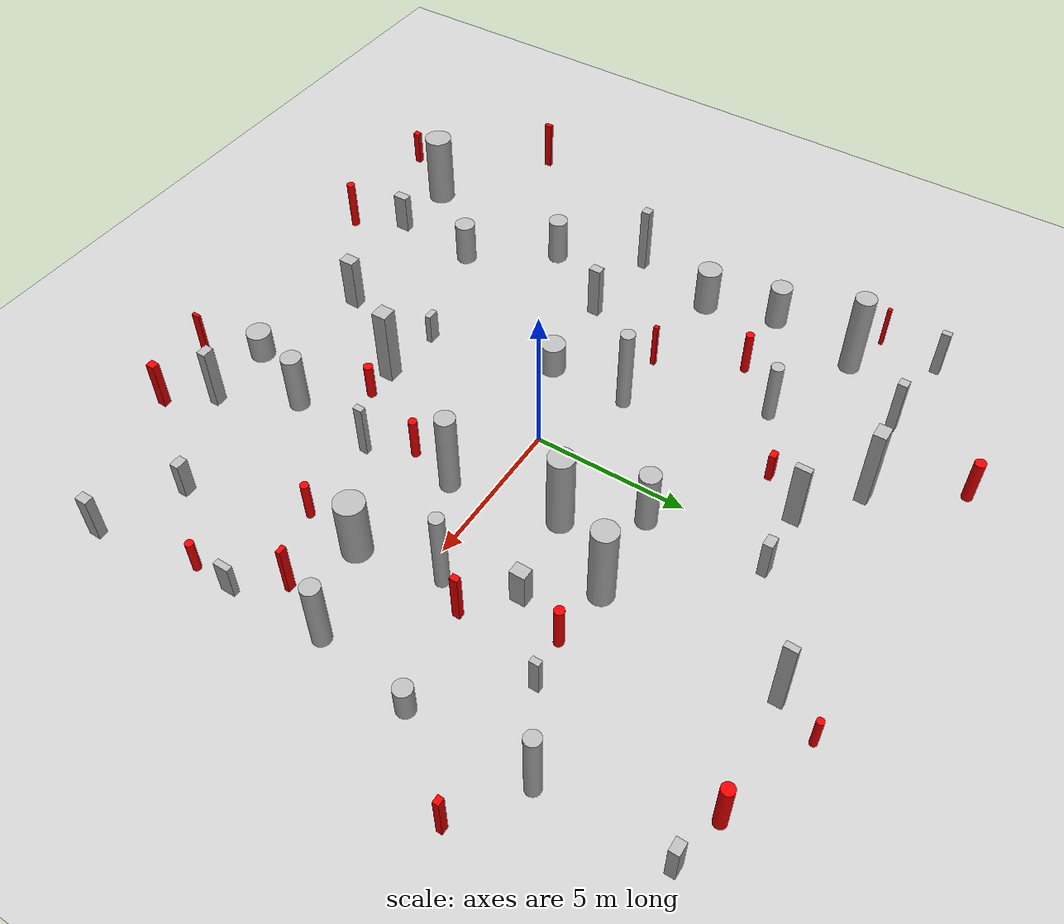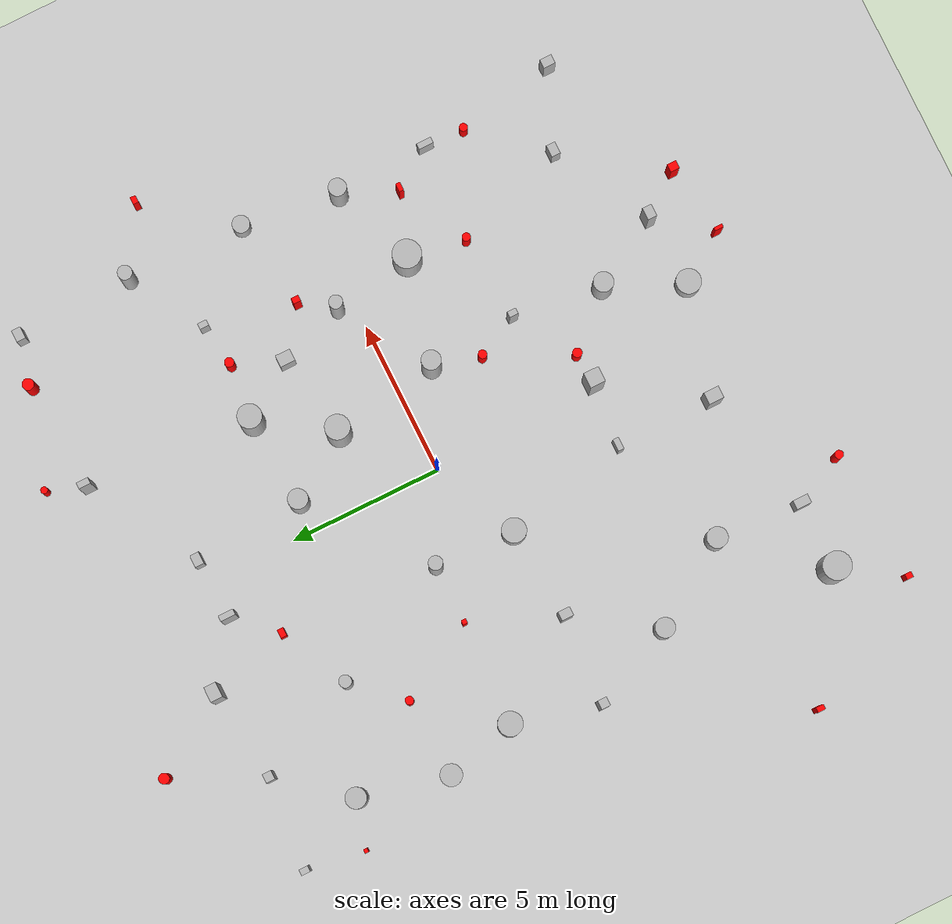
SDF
<sdf version='1.7'>
            <world name='default'>
                <!-- Generated benchmark scenario: Sparse-Slow. Dynamic cylinders: 20; speed range: 0.3-0.5 m/s. -->

                <light name='sun' type='directional'>
                <cast_shadows>1</cast_shadows>
                <pose>0 0 10 0 -0 0</pose>
                <diffuse>0.8 0.8 0.8 1</diffuse>
                <specular>0.2 0.2 0.2 1</specular>
                <attenuation>
                    <range>1000</range>
                    <constant>0.9</constant>
                    <linear>0.01</linear>
                    <quadratic>0.001</quadratic>
                </attenuation>
                <direction>-0.5 0.1 -0.9</direction>
                <spot>
                    <inner_angle>0</inner_angle>
                    <outer_angle>0</outer_angle>
                    <falloff>0</falloff>
                </spot>
                </light>
                <model name='ground_plane'>
                <static>1</static>
                <link name='link'>
                    <collision name='collision'>
                    <geometry>
                        <plane>
                        <normal>0 0 1</normal>
                        <size>100 100</size>
                        </plane>
                    </geometry>
                    <surface>
                        <contact>
                        <collide_bitmask>65535</collide_bitmask>
                        <ode/>
                        </contact>
                        <friction>
                        <ode>
                            <mu>100</mu>
                            <mu2>50</mu2>
                        </ode>
                        <torsional>
                            <ode/>
                        </torsional>
                        </friction>
                        <bounce/>
                    </surface>
                    <max_contacts>10</max_contacts>
                    </collision>
                    <visual name='visual'>
                    <cast_shadows>0</cast_shadows>
                    <geometry>
                        <plane>
                        <normal>0 0 1</normal>
                        <size>100 100</size>
                        </plane>
                    </geometry>
                    <material>
                        <script>
                        <uri>file://media/materials/scripts/gazebo.material</uri>
                        <name>Gazebo/Grey</name>
                        </script>
                    </material>
                    </visual>
                    <self_collide>0</self_collide>
                    <enable_wind>0</enable_wind>
                    <kinematic>0</kinematic>
                </link>
                </model>
                <gravity>0 0 -9.8</gravity>
                <magnetic_field>6e-06 2.3e-05 -4.2e-05</magnetic_field>
                <atmosphere type='adiabatic'/>
                <physics type='ode'>
                <max_step_size>0.001</max_step_size>
                <real_time_factor>1</real_time_factor>
                <real_time_update_rate>1000</real_time_update_rate>
                </physics>
                <scene>
                <ambient>0.4 0.4 0.4 1</ambient>
                <background>0.7 0.7 0.7 1</background>
                <shadows>1</shadows>
                </scene>
                <wind/>
                <spherical_coordinates>
                <surface_model>EARTH_WGS84</surface_model>
                <latitude_deg>0</latitude_deg>
                <longitude_deg>0</longitude_deg>
                <elevation>0</elevation>
                <heading_deg>0</heading_deg>
                </spherical_coordinates>

                            <model name='cylinder_0_0.7_0.7_2.1'>
                            <static>true</static>
                            <pose>0.9762700785464951 4.30378732744839 1.0448831829968968 0 0 0</pose> <!-- X, Y, Z, Roll, Pitch, Yaw -->
                            <link name='link'>
                                <visual name='visual'>
                                <geometry>
                                    <cylinder>
                                        <radius>0.3270964398016714</radius>
                                        <length>2.0897663659937935</length>
                                    </cylinder>
                                </geometry>
                                </visual>
                            </link>
                            </model>

                            <model name='cylinder_1_0.6_0.6_2.9'>
                            <static>true</static>
                            <pose>2.917882261333123 -1.2482557747461502 1.4636627605010293 0 0 0</pose> <!-- X, Y, Z, Roll, Pitch, Yaw -->
                            <link name='link'>
                                <visual name='visual'>
                                <geometry>
                                    <cylinder>
                                        <radius>0.3150324556477333</radius>
                                        <length>2.9273255210020586</length>
                                    </cylinder>
                                </geometry>
                                </visual>
                            </link>
                            </model>

                            <model name='cylinder_2_0.4_0.4_2.9'>
                            <static>true</static>
                            <pose>5.834500761653292 0.5778983950580887 1.425596638292661 0 0 0</pose> <!-- X, Y, Z, Roll, Pitch, Yaw -->
                            <link name='link'>
                                <visual name='visual'>
                                <geometry>
                                    <cylinder>
                                        <radius>0.2213108174593661</radius>
                                        <length>2.851193276585322</length>
                                    </cylinder>
                                </geometry>
                                </visual>
                            </link>
                            </model>

                            <model name='cylinder_3_0.9_0.9_2.6'>
                            <static>true</static>
                            <pose>-8.257414005969185 -9.595632051193485 1.2781567509498504 0 0 0</pose> <!-- X, Y, Z, Roll, Pitch, Yaw -->
                            <link name='link'>
                                <visual name='visual'>
                                <geometry>
                                    <cylinder>
                                        <radius>0.46100364447404574</radius>
                                        <length>2.5563135018997007</length>
                                    </cylinder>
                                </geometry>
                                </visual>
                            </link>
                            </model>

                            <model name='cylinder_4_0.5_0.5_2.6'>
                            <static>true</static>
                            <pose>9.572366844655281 5.983171284334471 1.2805291762864555 0 0 0</pose> <!-- X, Y, Z, Roll, Pitch, Yaw -->
                            <link name='link'>
                                <visual name='visual'>
                                <geometry>
                                    <cylinder>
                                        <radius>0.23548232776067998</radius>
                                        <length>2.561058352572911</length>
                                    </cylinder>
                                </geometry>
                                </visual>
                            </link>
                            </model>

                            <model name='cylinder_5_0.6_0.6_2.0'>
                            <static>true</static>
                            <pose>2.798420426550477 -7.132934251819072 1.0218483217500718 0 0 0</pose> <!-- X, Y, Z, Roll, Pitch, Yaw -->
                            <link name='link'>
                                <visual name='visual'>
                                <geometry>
                                    <cylinder>
                                        <radius>0.3243985819971571</radius>
                                        <length>2.0436966435001436</length>
                                    </cylinder>
                                </geometry>
                                </visual>
                            </link>
                            </model>

                            <model name='cylinder_6_0.4_0.4_2.1'>
                            <static>true</static>
                            <pose>-4.70888775790746 5.484673788684333 1.0684339488686485 0 0 0</pose> <!-- X, Y, Z, Roll, Pitch, Yaw -->
                            <link name='link'>
                                <visual name='visual'>
                                <geometry>
                                    <cylinder>
                                        <radius>0.20563694013090655</radius>
                                        <length>2.136867897737297</length>
                                    </cylinder>
                                </geometry>
                                </visual>
                            </link>
                            </model>

                            <model name='cylinder_7_0.8_0.8_2.9'>
                            <static>true</static>
                            <pose>2.352709941517542 2.2419144544484286 1.4437480785146242 0 0 0</pose> <!-- X, Y, Z, Roll, Pitch, Yaw -->
                            <link name='link'>
                                <visual name='visual'>
                                <geometry>
                                    <cylinder>
                                        <radius>0.404546089731045</radius>
                                        <length>2.8874961570292483</length>
                                    </cylinder>
                                </geometry>
                                </visual>
                            </link>
                            </model>

                            <model name='cylinder_8_0.8_0.8_1.1'>
                            <static>true</static>
                            <pose>-2.80984198852428 -1.259360924013171 0.5602254716292698 0 0 0</pose> <!-- X, Y, Z, Roll, Pitch, Yaw -->
                            <link name='link'>
                                <visual name='visual'>
                                <geometry>
                                    <cylinder>
                                        <radius>0.4000300146337003</radius>
                                        <length>1.1204509432585397</length>
                                    </cylinder>
                                </geometry>
                                </visual>
                            </link>
                            </model>

                            <model name='cylinder_9_0.5_0.5_3.0'>
                            <static>true</static>
                            <pose>-2.725784581147548 1.4039354083575937 1.4883738380592262 0 0 0</pose> <!-- X, Y, Z, Roll, Pitch, Yaw -->
                            <link name='link'>
                                <visual name='visual'>
                                <geometry>
                                    <cylinder>
                                        <radius>0.23061344322440844</radius>
                                        <length>2.9767476761184524</length>
                                    </cylinder>
                                </geometry>
                                </visual>
                            </link>
                            </model>

                            <model name='cylinder_10_0.7_0.7_1.5'>
                            <static>true</static>
                            <pose>-5.822464878103306 -6.773809642300074 0.7532916025397821 0 0 0</pose> <!-- X, Y, Z, Roll, Pitch, Yaw -->
                            <link name='link'>
                                <visual name='visual'>
                                <geometry>
                                    <cylinder>
                                        <radius>0.3398932318568919</radius>
                                        <length>1.5065832050795642</length>
                                    </cylinder>
                                </geometry>
                                </visual>
                            </link>
                            </model>

                            <model name='cylinder_11_0.7_0.7_3.0'>
                            <static>true</static>
                            <pose>-8.057974484138775 6.758898149976076 1.4764594650133958 0 0 0</pose> <!-- X, Y, Z, Roll, Pitch, Yaw -->
                            <link name='link'>
                                <visual name='visual'>
                                <geometry>
                                    <cylinder>
                                        <radius>0.3405953604943105</radius>
                                        <length>2.9529189300267915</length>
                                    </cylinder>
                                </geometry>
                                </visual>
                            </link>
                            </model>

                            <model name='cylinder_12_0.6_0.6_1.1'>
                            <static>true</static>
                            <pose>9.535221763806742 2.0969103949009202 0.5391877922543207 0 0 0</pose> <!-- X, Y, Z, Roll, Pitch, Yaw -->
                            <link name='link'>
                                <visual name='visual'>
                                <geometry>
                                    <cylinder>
                                        <radius>0.2848420887729229</radius>
                                        <length>1.0783755845086413</length>
                                    </cylinder>
                                </geometry>
                                </visual>
                            </link>
                            </model>

                            <model name='cylinder_13_0.6_0.6_1.6'>
                            <static>true</static>
                            <pose>-7.596068775736622 -4.077196049557101 0.817983179393976 0 0 0</pose> <!-- X, Y, Z, Roll, Pitch, Yaw -->
                            <link name='link'>
                                <visual name='visual'>
                                <geometry>
                                    <cylinder>
                                        <radius>0.324278898354401</radius>
                                        <length>1.635966358787952</length>
                                    </cylinder>
                                </geometry>
                                </visual>
                            </link>
                            </model>

                            <model name='cylinder_14_0.7_0.7_1.5'>
                            <static>true</static>
                            <pose>-8.717050073024312 3.849442387400398 0.7653894909394454 0 0 0</pose> <!-- X, Y, Z, Roll, Pitch, Yaw -->
                            <link name='link'>
                                <visual name='visual'>
                                <geometry>
                                    <cylinder>
                                        <radius>0.3569744160400099</radius>
                                        <length>1.5307789818788908</length>
                                    </cylinder>
                                </geometry>
                                </visual>
                            </link>
                            </model>

                            <model name='cylinder_15_0.8_0.8_1.6'>
                            <static>true</static>
                            <pose>-8.121189784831166 1.5189299111235854 0.8185689524513237 0 0 0</pose> <!-- X, Y, Z, Roll, Pitch, Yaw -->
                            <link name='link'>
                                <visual name='visual'>
                                <geometry>
                                    <cylinder>
                                        <radius>0.4002231139891045</radius>
                                        <length>1.6371379049026473</length>
                                    </cylinder>
                                </geometry>
                                </visual>
                            </link>
                            </model>

                            <model name='cylinder_16_0.8_0.8_1.0'>
                            <static>true</static>
                            <pose>1.7302586962016626 -9.597849076250128 0.5046954761925471 0 0 0</pose> <!-- X, Y, Z, Roll, Pitch, Yaw -->
                            <link name='link'>
                                <visual name='visual'>
                                <geometry>
                                    <cylinder>
                                        <radius>0.4033449610388691</radius>
                                        <length>1.0093909523850941</length>
                                    </cylinder>
                                </geometry>
                                </visual>
                            </link>
                            </model>

                            <model name='cylinder_17_0.6_0.6_2.4'>
                            <static>true</static>
                            <pose>9.054980230339702 -1.0574924276474533 1.1994792753175043 0 0 0</pose> <!-- X, Y, Z, Roll, Pitch, Yaw -->
                            <link name='link'>
                                <visual name='visual'>
                                <geometry>
                                    <cylinder>
                                        <radius>0.2892310852565401</radius>
                                        <length>2.3989585506350086</length>
                                    </cylinder>
                                </geometry>
                                </visual>
                            </link>
                            </model>

                            <model name='cylinder_18_0.9_0.9_2.2'>
                            <static>true</static>
                            <pose>6.275956394049544 -2.0698851830603076 1.0812728726358587 0 0 0</pose> <!-- X, Y, Z, Roll, Pitch, Yaw -->
                            <link name='link'>
                                <visual name='visual'>
                                <geometry>
                                    <cylinder>
                                        <radius>0.4645206085564558</radius>
                                        <length>2.1625457452717174</length>
                                    </cylinder>
                                </geometry>
                                </visual>
                            </link>
                            </model>

                            <model name='cylinder_19_0.8_0.8_2.9'>
                            <static>true</static>
                            <pose>3.850631801555318 4.50508559639281 1.4560836347232238 0 0 0</pose> <!-- X, Y, Z, Roll, Pitch, Yaw -->
                            <link name='link'>
                                <visual name='visual'>
                                <geometry>
                                    <cylinder>
                                        <radius>0.3931970597688912</radius>
                                        <length>2.9121672694464475</length>
                                    </cylinder>
                                </geometry>
                                </visual>
                            </link>
                            </model>

                            <model name='box_0_0.2_0.3_1.9'>
                            <static>true</static>
                            <pose>3.2034707498537003 -4.198447855791119 0.9287687009457661 0 0 0</pose> <!-- X, Y, Z, Roll, Pitch, Yaw -->
                            <link name='link'>
                                <visual name='visual'>
                                <geometry>
                                    <box>
                                        <size>0.2 0.3 1.9</size> <!-- Width, Depth, Height -->
                                    </box>
                                </geometry>
                                </visual>
                            </link>
                            </model>

                            <model name='box_1_0.2_0.5_2.4'>
                            <static>true</static>
                            <pose>-1.2827014946874638 7.838467100313441 1.2038885835403663 0 0 0</pose> <!-- X, Y, Z, Roll, Pitch, Yaw -->
                            <link name='link'>
                                <visual name='visual'>
                                <geometry>
                                    <box>
                                        <size>0.2 0.5 2.4</size> <!-- Width, Depth, Height -->
                                    </box>
                                </geometry>
                                </visual>
                            </link>
                            </model>

                            <model name='box_2_0.2_0.4_2.7'>
                            <static>true</static>
                            <pose>4.2848259909822275 9.976940131357331 1.3681260573682144 0 0 0</pose> <!-- X, Y, Z, Roll, Pitch, Yaw -->
                            <link name='link'>
                                <visual name='visual'>
                                <geometry>
                                    <box>
                                        <size>0.2 0.4 2.7</size> <!-- Width, Depth, Height -->
                                    </box>
                                </geometry>
                                </visual>
                            </link>
                            </model>

                            <model name='box_3_0.4_0.5_1.9'>
                            <static>true</static>
                            <pose>-1.8563340554800067 -8.61666009089724 0.9535426826780689 0 0 0</pose> <!-- X, Y, Z, Roll, Pitch, Yaw -->
                            <link name='link'>
                                <visual name='visual'>
                                <geometry>
                                    <box>
                                        <size>0.4 0.5 1.9</size> <!-- Width, Depth, Height -->
                                    </box>
                                </geometry>
                                </visual>
                            </link>
                            </model>

                            <model name='box_4_0.3_0.5_1.4'>
                            <static>true</static>
                            <pose>-6.000069502071998 -9.62956411078772 0.7239246880603801 0 0 0</pose> <!-- X, Y, Z, Roll, Pitch, Yaw -->
                            <link name='link'>
                                <visual name='visual'>
                                <geometry>
                                    <box>
                                        <size>0.3 0.5 1.4</size> <!-- Width, Depth, Height -->
                                    </box>
                                </geometry>
                                </visual>
                            </link>
                            </model>

                            <model name='box_5_0.4_0.3_2.2'>
                            <static>true</static>
                            <pose>4.088288038470655 -9.363221409373843 1.1214784014997634 0 0 0</pose> <!-- X, Y, Z, Roll, Pitch, Yaw -->
                            <link name='link'>
                                <visual name='visual'>
                                <geometry>
                                    <box>
                                        <size>0.4 0.3 2.2</size> <!-- Width, Depth, Height -->
                                    </box>
                                </geometry>
                                </visual>
                            </link>
                            </model>

                            <model name='box_6_0.3_0.3_2.0'>
                            <static>true</static>
                            <pose>-6.276139882393277 8.887447799678672 0.9904588086175671 0 0 0</pose> <!-- X, Y, Z, Roll, Pitch, Yaw -->
                            <link name='link'>
                                <visual name='visual'>
                                <geometry>
                                    <box>
                                        <size>0.3 0.3 2.0</size> <!-- Width, Depth, Height -->
                                    </box>
                                </geometry>
                                </visual>
                            </link>
                            </model>

                            <model name='box_7_0.3_0.3_2.4'>
                            <static>true</static>
                            <pose>-8.839416793522489 -1.3116674888375854 1.1963434888154594 0 0 0</pose> <!-- X, Y, Z, Roll, Pitch, Yaw -->
                            <link name='link'>
                                <visual name='visual'>
                                <geometry>
                                    <box>
                                        <size>0.3 0.3 2.4</size> <!-- Width, Depth, Height -->
                                    </box>
                                </geometry>
                                </visual>
                            </link>
                            </model>

                            <model name='box_8_0.4_0.3_1.4'>
                            <static>true</static>
                            <pose>0.731584222174444 7.933425860806842 0.7168969843984739 0 0 0</pose> <!-- X, Y, Z, Roll, Pitch, Yaw -->
                            <link name='link'>
                                <visual name='visual'>
                                <geometry>
                                    <box>
                                        <size>0.4 0.3 1.4</size> <!-- Width, Depth, Height -->
                                    </box>
                                </geometry>
                                </visual>
                            </link>
                            </model>

                            <model name='box_9_0.3_0.4_1.9'>
                            <static>true</static>
                            <pose>-5.850598491177812 -1.5062906249698749 0.9635754243648107 0 0 0</pose> <!-- X, Y, Z, Roll, Pitch, Yaw -->
                            <link name='link'>
                                <visual name='visual'>
                                <geometry>
                                    <box>
                                        <size>0.3 0.4 1.9</size> <!-- Width, Depth, Height -->
                                    </box>
                                </geometry>
                                </visual>
                            </link>
                            </model>

                            <model name='box_10_0.4_0.3_1.3'>
                            <static>true</static>
                            <pose>7.277112118464629 -7.649362880759338 0.6320681063451533 0 0 0</pose> <!-- X, Y, Z, Roll, Pitch, Yaw -->
                            <link name='link'>
                                <visual name='visual'>
                                <geometry>
                                    <box>
                                        <size>0.4 0.3 1.3</size> <!-- Width, Depth, Height -->
                                    </box>
                                </geometry>
                                </visual>
                            </link>
                            </model>

                            <model name='box_11_0.2_0.5_1.2'>
                            <static>true</static>
                            <pose>9.23872757094458 -4.157049464149023 0.6002939422654978 0 0 0</pose> <!-- X, Y, Z, Roll, Pitch, Yaw -->
                            <link name='link'>
                                <visual name='visual'>
                                <geometry>
                                    <box>
                                        <size>0.2 0.5 1.2</size> <!-- Width, Depth, Height -->
                                    </box>
                                </geometry>
                                </visual>
                            </link>
                            </model>

                            <model name='box_12_0.5_0.4_2.9'>
                            <static>true</static>
                            <pose>-3.236820963263087 9.231403090829971 1.4493188224156814 0 0 0</pose> <!-- X, Y, Z, Roll, Pitch, Yaw -->
                            <link name='link'>
                                <visual name='visual'>
                                <geometry>
                                    <box>
                                        <size>0.5 0.4 2.9</size> <!-- Width, Depth, Height -->
                                    </box>
                                </geometry>
                                </visual>
                            </link>
                            </model>

                            <model name='box_13_0.5_0.5_2.7'>
                            <static>true</static>
                            <pose>0.22637965092912005 -5.513659420505215 1.3621915174216834 0 0 0</pose> <!-- X, Y, Z, Roll, Pitch, Yaw -->
                            <link name='link'>
                                <visual name='visual'>
                                <geometry>
                                    <box>
                                        <size>0.5 0.5 2.7</size> <!-- Width, Depth, Height -->
                                    </box>
                                </geometry>
                                </visual>
                            </link>
                            </model>

                            <model name='box_14_0.4_0.2_1.1'>
                            <static>true</static>
                            <pose>-1.8551765717238524 -5.355317156581146 0.5534271817868253 0 0 0</pose> <!-- X, Y, Z, Roll, Pitch, Yaw -->
                            <link name='link'>
                                <visual name='visual'>
                                <geometry>
                                    <box>
                                        <size>0.4 0.2 1.1</size> <!-- Width, Depth, Height -->
                                    </box>
                                </geometry>
                                </visual>
                            </link>
                            </model>

                            <model name='box_15_0.2_0.3_1.3'>
                            <static>true</static>
                            <pose>7.211023476575875 4.540885254226566 0.6314827992911276 0 0 0</pose> <!-- X, Y, Z, Roll, Pitch, Yaw -->
                            <link name='link'>
                                <visual name='visual'>
                                <geometry>
                                    <box>
                                        <size>0.2 0.3 1.3</size> <!-- Width, Depth, Height -->
                                    </box>
                                </geometry>
                                </visual>
                            </link>
                            </model>

                            <model name='box_16_0.4_0.5_1.3'>
                            <static>true</static>
                            <pose>5.135572854737784 2.721221108942826 0.6605388224852564 0 0 0</pose> <!-- X, Y, Z, Roll, Pitch, Yaw -->
                            <link name='link'>
                                <visual name='visual'>
                                <geometry>
                                    <box>
                                        <size>0.4 0.5 1.3</size> <!-- Width, Depth, Height -->
                                    </box>
                                </geometry>
                                </visual>
                            </link>
                            </model>

                            <model name='box_17_0.2_0.3_1.7'>
                            <static>true</static>
                            <pose>-9.333907469066077 9.17965443726947 0.8567068904025429 0 0 0</pose> <!-- X, Y, Z, Roll, Pitch, Yaw -->
                            <link name='link'>
                                <visual name='visual'>
                                <geometry>
                                    <box>
                                        <size>0.2 0.3 1.7</size> <!-- Width, Depth, Height -->
                                    </box>
                                </geometry>
                                </visual>
                            </link>
                            </model>

                            <model name='box_18_0.4_0.3_1.3'>
                            <static>true</static>
                            <pose>9.485124256361004 9.806900031217879 0.6629544260466054 0 0 0</pose> <!-- X, Y, Z, Roll, Pitch, Yaw -->
                            <link name='link'>
                                <visual name='visual'>
                                <geometry>
                                    <box>
                                        <size>0.4 0.3 1.3</size> <!-- Width, Depth, Height -->
                                    </box>
                                </geometry>
                                </visual>
                            </link>
                            </model>

                            <model name='box_19_0.3_0.4_1.6'>
                            <static>true</static>
                            <pose>9.78819554568863 -8.693915856964395 0.7883984973314939 0 0 0</pose> <!-- X, Y, Z, Roll, Pitch, Yaw -->
                            <link name='link'>
                                <visual name='visual'>
                                <geometry>
                                    <box>
                                        <size>0.3 0.4 1.6</size> <!-- Width, Depth, Height -->
                                    </box>
                                </geometry>
                                </visual>
                            </link>
                            </model>

                            <model name='dynamic_cylinder_0_0.3_0.3_1.6'>
                            <static>true</static>
                            <pose>-6.094483560216853 3.9806188214205047 0.7826298825091915 0 0 0</pose> <!-- X, Y, Z, Roll, Pitch, Yaw -->
                            <link name='link'>
                                <visual name='visual'>
                                    <geometry>
                                        <cylinder>
                                            <radius>0.13605455604858924</radius>
                                            <length>1.565259765018383</length>
                                        </cylinder>
                                    </geometry>
                                    <material>
                                        <ambient>1 0 0 1</ambient> <!-- Red color -->
                                        <diffuse>1 0 0 1</diffuse> <!-- Red color -->
                                        <specular>0.5 0.5 0.5 1</specular> <!-- Specular highlight -->
                                    </material>
                                </visual>
                            </link>
                            <plugin name="obstacle_motion" filename="libobstaclePathPlugin.so">
                                <orientation>false</orientation>
                                <loop>0</loop>
                                <velocity>0.334343</velocity>
                                <path>
                                <waypoint>-6.094483560216853 3.9806188214205047 0.7826298825091915</waypoint>
                                <waypoint>-1.8218642775396177 1.3125074078740546 0.7826298825091915</waypoint>
                                </path>
                            </plugin>
                            </model>

                            <model name='dynamic_cylinder_1_0.4_0.4_1.8'>
                            <static>true</static>
                            <pose>7.887765949337705 10.199205886876612 0.894196571057319 0 0 0</pose> <!-- X, Y, Z, Roll, Pitch, Yaw -->
                            <link name='link'>
                                <visual name='visual'>
                                    <geometry>
                                        <cylinder>
                                            <radius>0.1904948345549927</radius>
                                            <length>1.788393142114638</length>
                                        </cylinder>
                                    </geometry>
                                    <material>
                                        <ambient>1 0 0 1</ambient> <!-- Red color -->
                                        <diffuse>1 0 0 1</diffuse> <!-- Red color -->
                                        <specular>0.5 0.5 0.5 1</specular> <!-- Specular highlight -->
                                    </material>
                                </visual>
                            </link>
                            <plugin name="obstacle_motion" filename="libobstaclePathPlugin.so">
                                <orientation>false</orientation>
                                <loop>0</loop>
                                <velocity>0.409091</velocity>
                                <path>
                                <waypoint>7.887765949337705 10.199205886876612 0.894196571057319</waypoint>
                                <waypoint>-6.416952172085628 -3.6355351321784823 0.894196571057319</waypoint>
                                </path>
                            </plugin>
                            </model>

                            <model name='dynamic_cylinder_2_0.3_0.3_1.6'>
                            <static>true</static>
                            <pose>-4.882649638463283 11.808269841947379 0.7759073060311001 0 0 0</pose> <!-- X, Y, Z, Roll, Pitch, Yaw -->
                            <link name='link'>
                                <visual name='visual'>
                                    <geometry>
                                        <cylinder>
                                            <radius>0.17307090991274762</radius>
                                            <length>1.5518146120622003</length>
                                        </cylinder>
                                    </geometry>
                                    <material>
                                        <ambient>1 0 0 1</ambient> <!-- Red color -->
                                        <diffuse>1 0 0 1</diffuse> <!-- Red color -->
                                        <specular>0.5 0.5 0.5 1</specular> <!-- Specular highlight -->
                                    </material>
                                </visual>
                            </link>
                            <plugin name="obstacle_motion" filename="libobstaclePathPlugin.so">
                                <orientation>false</orientation>
                                <loop>0</loop>
                                <velocity>0.483838</velocity>
                                <path>
                                <waypoint>-4.882649638463283 11.808269841947379 0.7759073060311001</waypoint>
                                <waypoint>-9.458252282826427 10.82286266532946 0.7759073060311001</waypoint>
                                </path>
                            </plugin>
                            </model>

                            <model name='dynamic_cylinder_3_0.3_0.3_1.1'>
                            <static>true</static>
                            <pose>9.16128509601215 -5.4615145088169 0.5687412396190572 0 0 0</pose> <!-- X, Y, Z, Roll, Pitch, Yaw -->
                            <link name='link'>
                                <visual name='visual'>
                                    <geometry>
                                        <cylinder>
                                            <radius>0.13044684073773197</radius>
                                            <length>1.1374824792381144</length>
                                        </cylinder>
                                    </geometry>
                                    <material>
                                        <ambient>1 0 0 1</ambient> <!-- Red color -->
                                        <diffuse>1 0 0 1</diffuse> <!-- Red color -->
                                        <specular>0.5 0.5 0.5 1</specular> <!-- Specular highlight -->
                                    </material>
                                </visual>
                            </link>
                            <plugin name="obstacle_motion" filename="libobstaclePathPlugin.so">
                                <orientation>false</orientation>
                                <loop>0</loop>
                                <velocity>0.356566</velocity>
                                <path>
                                <waypoint>9.16128509601215 -5.4615145088169 0.5687412396190572</waypoint>
                                <waypoint>-3.0168916002980133 5.970918180963196 0.5687412396190572</waypoint>
                                </path>
                            </plugin>
                            </model>

                            <model name='dynamic_cylinder_4_0.2_0.2_1.1'>
                            <static>true</static>
                            <pose>4.789801445394033 11.23117359850145 0.5609418822750922 0 0 0</pose> <!-- X, Y, Z, Roll, Pitch, Yaw -->
                            <link name='link'>
                                <visual name='visual'>
                                    <geometry>
                                        <cylinder>
                                            <radius>0.11312893284732561</radius>
                                            <length>1.1218837645501845</length>
                                        </cylinder>
                                    </geometry>
                                    <material>
                                        <ambient>1 0 0 1</ambient> <!-- Red color -->
                                        <diffuse>1 0 0 1</diffuse> <!-- Red color -->
                                        <specular>0.5 0.5 0.5 1</specular> <!-- Specular highlight -->
                                    </material>
                                </visual>
                            </link>
                            <plugin name="obstacle_motion" filename="libobstaclePathPlugin.so">
                                <orientation>false</orientation>
                                <loop>0</loop>
                                <velocity>0.431313</velocity>
                                <path>
                                <waypoint>4.789801445394033 11.23117359850145 0.5609418822750922</waypoint>
                                <waypoint>-1.1562796159257687 -10.299125323578998 0.5609418822750922</waypoint>
                                </path>
                            </plugin>
                            </model>

                            <model name='dynamic_cylinder_5_0.3_0.3_1.5'>
                            <static>true</static>
                            <pose>2.498827296501169 -2.812606580211501 0.7368921675047347 0 0 0</pose> <!-- X, Y, Z, Roll, Pitch, Yaw -->
                            <link name='link'>
                                <visual name='visual'>
                                    <geometry>
                                        <cylinder>
                                            <radius>0.14067333458357484</radius>
                                            <length>1.4737843350094695</length>
                                        </cylinder>
                                    </geometry>
                                    <material>
                                        <ambient>1 0 0 1</ambient> <!-- Red color -->
                                        <diffuse>1 0 0 1</diffuse> <!-- Red color -->
                                        <specular>0.5 0.5 0.5 1</specular> <!-- Specular highlight -->
                                    </material>
                                </visual>
                            </link>
                            <plugin name="obstacle_motion" filename="libobstaclePathPlugin.so">
                                <orientation>false</orientation>
                                <loop>0</loop>
                                <velocity>0.304040</velocity>
                                <path>
                                <waypoint>2.498827296501169 -2.812606580211501 0.7368921675047347</waypoint>
                                <waypoint>11.227072123164046 1.125237640066132 0.7368921675047347</waypoint>
                                </path>
                            </plugin>
                            </model>

                            <model name='dynamic_cylinder_6_0.3_0.3_1.2'>
                            <static>true</static>
                            <pose>1.2498786406072995 -5.480333577452499 0.6241523303919245 0 0 0</pose> <!-- X, Y, Z, Roll, Pitch, Yaw -->
                            <link name='link'>
                                <visual name='visual'>
                                    <geometry>
                                        <cylinder>
                                            <radius>0.15249704422542643</radius>
                                            <length>1.248304660783849</length>
                                        </cylinder>
                                    </geometry>
                                    <material>
                                        <ambient>1 0 0 1</ambient> <!-- Red color -->
                                        <diffuse>1 0 0 1</diffuse> <!-- Red color -->
                                        <specular>0.5 0.5 0.5 1</specular> <!-- Specular highlight -->
                                    </material>
                                </visual>
                            </link>
                            <plugin name="obstacle_motion" filename="libobstaclePathPlugin.so">
                                <orientation>false</orientation>
                                <loop>0</loop>
                                <velocity>0.378788</velocity>
                                <path>
                                <waypoint>1.2498786406072995 -5.480333577452499 0.6241523303919245</waypoint>
                                <waypoint>-2.3588751508896326 -6.0380768380086955 0.6241523303919245</waypoint>
                                </path>
                            </plugin>
                            </model>

                            <model name='dynamic_cylinder_7_0.3_0.3_1.4'>
                            <static>true</static>
                            <pose>6.014280550295702 -3.995820821009392 0.6784542050636808 0 0 0</pose> <!-- X, Y, Z, Roll, Pitch, Yaw -->
                            <link name='link'>
                                <visual name='visual'>
                                    <geometry>
                                        <cylinder>
                                            <radius>0.1348475989033497</radius>
                                            <length>1.3569084101273616</length>
                                        </cylinder>
                                    </geometry>
                                    <material>
                                        <ambient>1 0 0 1</ambient> <!-- Red color -->
                                        <diffuse>1 0 0 1</diffuse> <!-- Red color -->
                                        <specular>0.5 0.5 0.5 1</specular> <!-- Specular highlight -->
                                    </material>
                                </visual>
                            </link>
                            <plugin name="obstacle_motion" filename="libobstaclePathPlugin.so">
                                <orientation>false</orientation>
                                <loop>0</loop>
                                <velocity>0.453535</velocity>
                                <path>
                                <waypoint>6.014280550295702 -3.995820821009392 0.6784542050636808</waypoint>
                                <waypoint>8.695645124061656 -10.831432896587316 0.6784542050636808</waypoint>
                                </path>
                            </plugin>
                            </model>

                            <model name='dynamic_cylinder_8_0.3_0.3_1.5'>
                            <static>true</static>
                            <pose>5.762340614824382 4.332347547427823 0.7704969929109852 0 0 0</pose> <!-- X, Y, Z, Roll, Pitch, Yaw -->
                            <link name='link'>
                                <visual name='visual'>
                                    <geometry>
                                        <cylinder>
                                            <radius>0.15436780538280953</radius>
                                            <length>1.5409939858219703</length>
                                        </cylinder>
                                    </geometry>
                                    <material>
                                        <ambient>1 0 0 1</ambient> <!-- Red color -->
                                        <diffuse>1 0 0 1</diffuse> <!-- Red color -->
                                        <specular>0.5 0.5 0.5 1</specular> <!-- Specular highlight -->
                                    </material>
                                </visual>
                            </link>
                            <plugin name="obstacle_motion" filename="libobstaclePathPlugin.so">
                                <orientation>false</orientation>
                                <loop>0</loop>
                                <velocity>0.326263</velocity>
                                <path>
                                <waypoint>5.762340614824382 4.332347547427823 0.7704969929109852</waypoint>
                                <waypoint>5.052681665336294 -7.081831512967158 0.7704969929109852</waypoint>
                                </path>
                            </plugin>
                            </model>

                            <model name='dynamic_cylinder_9_0.3_0.3_1.7'>
                            <static>true</static>
                            <pose>-5.215208377307121 -11.274353807856418 0.8688445847068773 0 0 0</pose> <!-- X, Y, Z, Roll, Pitch, Yaw -->
                            <link name='link'>
                                <visual name='visual'>
                                    <geometry>
                                        <cylinder>
                                            <radius>0.14059423219682837</radius>
                                            <length>1.7376891694137546</length>
                                        </cylinder>
                                    </geometry>
                                    <material>
                                        <ambient>1 0 0 1</ambient> <!-- Red color -->
                                        <diffuse>1 0 0 1</diffuse> <!-- Red color -->
                                        <specular>0.5 0.5 0.5 1</specular> <!-- Specular highlight -->
                                    </material>
                                </visual>
                            </link>
                            <plugin name="obstacle_motion" filename="libobstaclePathPlugin.so">
                                <orientation>false</orientation>
                                <loop>0</loop>
                                <velocity>0.401010</velocity>
                                <path>
                                <waypoint>-5.215208377307121 -11.274353807856418 0.8688445847068773</waypoint>
                                <waypoint>-11.81078151579743 -3.0557023242961066 0.8688445847068773</waypoint>
                                </path>
                            </plugin>
                            </model>

<model name='dynamic_box_0_0.3_0.2_1.0'>
                            <static>true</static>
                            <pose>-2.4499532439614953 6.588022917220847 0.5312582238133927 0 0 0</pose> <!-- X, Y, Z, Roll, Pitch, Yaw -->
                            <link name='link'>
                                <visual name='visual'>
                                    <geometry>
                                        <box>
                                            <size>0.2826568681770961 0.20491541349572517 1.0343249523220466</size> <!-- Width, Depth, Height -->
                                        </box>
                                    </geometry>
                                    <material>
                                        <ambient>1 0 0 1</ambient> <!-- Red color -->
                                        <diffuse>1 0 0 1</diffuse> <!-- Red color -->
                                        <specular>0.5 0.5 0.5 1</specular> <!-- Specular highlight -->
                                    </material>
                                </visual>
                            </link>
                            <plugin name="obstacle_motion" filename="libobstaclePathPlugin.so">
                                <orientation>false</orientation>
                                <loop>0</loop>
                                <velocity>0.495960</velocity>
                                <path>
                                <waypoint>-2.4499532439614953 6.588022917220847 0.5312582238133927</waypoint>
                                <waypoint>11.216107248887571 8.66695219357888 0.5789281744179476</waypoint>
                                </path>
                            </plugin>
                            </model>

                            <model name='dynamic_box_1_0.2_0.3_1.8'>
                            <static>true</static>
                            <pose>-11.95044874621388 -7.226127967995369 0.9747410708006319 0 0 0</pose> <!-- X, Y, Z, Roll, Pitch, Yaw -->
                            <link name='link'>
                                <visual name='visual'>
                                    <geometry>
                                        <box>
                                            <size>0.16593023151628253 0.25835228423607415 1.7582575096892716</size> <!-- Width, Depth, Height -->
                                        </box>
                                    </geometry>
                                    <material>
                                        <ambient>1 0 0 1</ambient> <!-- Red color -->
                                        <diffuse>1 0 0 1</diffuse> <!-- Red color -->
                                        <specular>0.5 0.5 0.5 1</specular> <!-- Specular highlight -->
                                    </material>
                                </visual>
                            </link>
                            <plugin name="obstacle_motion" filename="libobstaclePathPlugin.so">
                                <orientation>false</orientation>
                                <loop>0</loop>
                                <velocity>0.368687</velocity>
                                <path>
                                <waypoint>-11.95044874621388 -7.226127967995369 0.9747410708006319</waypoint>
                                <waypoint>-4.069426257531747 3.321362538646765 0.9072147043078601</waypoint>
                                </path>
                            </plugin>
                            </model>

                            <model name='dynamic_box_2_0.2_0.2_1.2'>
                            <static>true</static>
                            <pose>-9.514116877239069 -11.565687403164596 0.6787199957223198 0 0 0</pose> <!-- X, Y, Z, Roll, Pitch, Yaw -->
                            <link name='link'>
                                <visual name='visual'>
                                    <geometry>
                                        <box>
                                            <size>0.19725441726586296 0.21763029208705986 1.239322915635053</size> <!-- Width, Depth, Height -->
                                        </box>
                                    </geometry>
                                    <material>
                                        <ambient>1 0 0 1</ambient> <!-- Red color -->
                                        <diffuse>1 0 0 1</diffuse> <!-- Red color -->
                                        <specular>0.5 0.5 0.5 1</specular> <!-- Specular highlight -->
                                    </material>
                                </visual>
                            </link>
                            <plugin name="obstacle_motion" filename="libobstaclePathPlugin.so">
                                <orientation>false</orientation>
                                <loop>0</loop>
                                <velocity>0.443434</velocity>
                                <path>
                                <waypoint>-9.514116877239069 -11.565687403164596 0.6787199957223198</waypoint>
                                <waypoint>-1.547243027257597 7.168541973213664 0.7120070116379371</waypoint>
                                </path>
                            </plugin>
                            </model>

                            <model name='dynamic_box_3_0.2_0.2_1.6'>
                            <static>true</static>
                            <pose>11.612491912358802 4.735926019921237 0.8270611917364601 0 0 0</pose> <!-- X, Y, Z, Roll, Pitch, Yaw -->
                            <link name='link'>
                                <visual name='visual'>
                                    <geometry>
                                        <box>
                                            <size>0.23293311730688773 0.18461088803322423 1.5762126820038065</size> <!-- Width, Depth, Height -->
                                        </box>
                                    </geometry>
                                    <material>
                                        <ambient>1 0 0 1</ambient> <!-- Red color -->
                                        <diffuse>1 0 0 1</diffuse> <!-- Red color -->
                                        <specular>0.5 0.5 0.5 1</specular> <!-- Specular highlight -->
                                    </material>
                                </visual>
                            </link>
                            <plugin name="obstacle_motion" filename="libobstaclePathPlugin.so">
                                <orientation>false</orientation>
                                <loop>0</loop>
                                <velocity>0.316162</velocity>
                                <path>
                                <waypoint>11.612491912358802 4.735926019921237 0.8270611917364601</waypoint>
                                <waypoint>-5.669575525188909 10.67101724213098 0.8016611843127539</waypoint>
                                </path>
                            </plugin>
                            </model>

                            <model name='dynamic_box_4_0.1_0.1_1.5'>
                            <static>true</static>
                            <pose>-9.633351150652535 7.225797126127311 0.7549822637175555 0 0 0</pose> <!-- X, Y, Z, Roll, Pitch, Yaw -->
                            <link name='link'>
                                <visual name='visual'>
                                    <geometry>
                                        <box>
                                            <size>0.13396390063434294 0.12967578753547512 1.5017285691694866</size> <!-- Width, Depth, Height -->
                                        </box>
                                    </geometry>
                                    <material>
                                        <ambient>1 0 0 1</ambient> <!-- Red color -->
                                        <diffuse>1 0 0 1</diffuse> <!-- Red color -->
                                        <specular>0.5 0.5 0.5 1</specular> <!-- Specular highlight -->
                                    </material>
                                </visual>
                            </link>
                            <plugin name="obstacle_motion" filename="libobstaclePathPlugin.so">
                                <orientation>false</orientation>
                                <loop>0</loop>
                                <velocity>0.390909</velocity>
                                <path>
                                <waypoint>-9.633351150652535 7.225797126127311 0.7549822637175555</waypoint>
                                <waypoint>7.594104749144538 7.381531299836965 0.7559650154676189</waypoint>
                                </path>
                            </plugin>
                            </model>

                            <model name='dynamic_box_5_0.2_0.3_1.8'>
                            <static>true</static>
                            <pose>6.558219025608558 1.6246259720842566 0.9736023682772382 0 0 0</pose> <!-- X, Y, Z, Roll, Pitch, Yaw -->
                            <link name='link'>
                                <visual name='visual'>
                                    <geometry>
                                        <box>
                                            <size>0.19164245195172241 0.25148131116434513 1.75060490957117</size> <!-- Width, Depth, Height -->
                                        </box>
                                    </geometry>
                                    <material>
                                        <ambient>1 0 0 1</ambient> <!-- Red color -->
                                        <diffuse>1 0 0 1</diffuse> <!-- Red color -->
                                        <specular>0.5 0.5 0.5 1</specular> <!-- Specular highlight -->
                                    </material>
                                </visual>
                            </link>
                            <plugin name="obstacle_motion" filename="libobstaclePathPlugin.so">
                                <orientation>false</orientation>
                                <loop>0</loop>
                                <velocity>0.465657</velocity>
                                <path>
                                <waypoint>6.558219025608558 1.6246259720842566 0.9736023682772382</waypoint>
                                <waypoint>11.57394665492026 11.824007843142393 0.8871640066221615</waypoint>
                                </path>
                            </plugin>
                            </model>

                            <model name='dynamic_box_6_0.3_0.2_1.8'>
                            <static>true</static>
                            <pose>8.283698087897289 -2.8136587381734834 0.9009054142079997 0 0 0</pose> <!-- X, Y, Z, Roll, Pitch, Yaw -->
                            <link name='link'>
                                <visual name='visual'>
                                    <geometry>
                                        <box>
                                            <size>0.27342290831873256 0.1588532328259378 1.7968570168081497</size> <!-- Width, Depth, Height -->
                                        </box>
                                    </geometry>
                                    <material>
                                        <ambient>1 0 0 1</ambient> <!-- Red color -->
                                        <diffuse>1 0 0 1</diffuse> <!-- Red color -->
                                        <specular>0.5 0.5 0.5 1</specular> <!-- Specular highlight -->
                                    </material>
                                </visual>
                            </link>
                            <plugin name="obstacle_motion" filename="libobstaclePathPlugin.so">
                                <orientation>false</orientation>
                                <loop>0</loop>
                                <velocity>0.338384</velocity>
                                <path>
                                <waypoint>8.283698087897289 -2.8136587381734834 0.9009054142079997</waypoint>
                                <waypoint>7.944746735889076 3.852868251468964 0.9136649567692058</waypoint>
                                </path>
                            </plugin>
                            </model>

                            <model name='dynamic_box_7_0.3_0.3_1.7'>
                            <static>true</static>
                            <pose>5.084890821439728 -10.710394863510352 0.8928533133938285 0 0 0</pose> <!-- X, Y, Z, Roll, Pitch, Yaw -->
                            <link name='link'>
                                <visual name='visual'>
                                    <geometry>
                                        <box>
                                            <size>0.2549495228384997 0.2988466166441524 1.7064620778553081</size> <!-- Width, Depth, Height -->
                                        </box>
                                    </geometry>
                                    <material>
                                        <ambient>1 0 0 1</ambient> <!-- Red color -->
                                        <diffuse>1 0 0 1</diffuse> <!-- Red color -->
                                        <specular>0.5 0.5 0.5 1</specular> <!-- Specular highlight -->
                                    </material>
                                </visual>
                            </link>
                            <plugin name="obstacle_motion" filename="libobstaclePathPlugin.so">
                                <orientation>false</orientation>
                                <loop>0</loop>
                                <velocity>0.413131</velocity>
                                <path>
                                <waypoint>5.084890821439728 -10.710394863510352 0.8928533133938285</waypoint>
                                <waypoint>-7.981540332971059 7.725693801788857 0.9232839012094404</waypoint>
                                </path>
                            </plugin>
                            </model>

                            <model name='dynamic_box_8_0.1_0.3_1.8'>
                            <static>true</static>
                            <pose>2.754477267463173 -11.108889506605252 0.8857501630441007 0 0 0</pose> <!-- X, Y, Z, Roll, Pitch, Yaw -->
                            <link name='link'>
                                <visual name='visual'>
                                    <geometry>
                                        <box>
                                            <size>0.10891422219753283 0.28265671927340674 1.7686500230581423</size> <!-- Width, Depth, Height -->
                                        </box>
                                    </geometry>
                                    <material>
                                        <ambient>1 0 0 1</ambient> <!-- Red color -->
                                        <diffuse>1 0 0 1</diffuse> <!-- Red color -->
                                        <specular>0.5 0.5 0.5 1</specular> <!-- Specular highlight -->
                                    </material>
                                </visual>
                            </link>
                            <plugin name="obstacle_motion" filename="libobstaclePathPlugin.so">
                                <orientation>false</orientation>
                                <loop>0</loop>
                                <velocity>0.487879</velocity>
                                <path>
                                <waypoint>2.754477267463173 -11.108889506605252 0.8857501630441007</waypoint>
                                <waypoint>-3.789506995109072 7.763321257620891 0.9709384821615443</waypoint>
                                </path>
                            </plugin>
                            </model>

                            <model name='dynamic_box_9_0.1_0.2_1.6'>
                            <static>true</static>
                            <pose>-4.678879239291322 1.391697614631184 0.9055223540851829 0 0 0</pose> <!-- X, Y, Z, Roll, Pitch, Yaw -->
                            <link name='link'>
                                <visual name='visual'>
                                    <geometry>
                                        <box>
                                            <size>0.14750462759726995 0.15426122025169325 1.6145557315702237</size> <!-- Width, Depth, Height -->
                                        </box>
                                    </geometry>
                                    <material>
                                        <ambient>1 0 0 1</ambient> <!-- Red color -->
                                        <diffuse>1 0 0 1</diffuse> <!-- Red color -->
                                        <specular>0.5 0.5 0.5 1</specular> <!-- Specular highlight -->
                                    </material>
                                </visual>
                            </link>
                            <plugin name="obstacle_motion" filename="libobstaclePathPlugin.so">
                                <orientation>false</orientation>
                                <loop>0</loop>
                                <velocity>0.360606</velocity>
                                <path>
                                <waypoint>-4.678879239291322 1.391697614631184 0.9055223540851829</waypoint>
                                <waypoint>-2.3892351663378406 3.980913559436157 0.8473658221483104</waypoint>
                                </path>
                            </plugin>
                            </model>

</world>
            </sdf>
